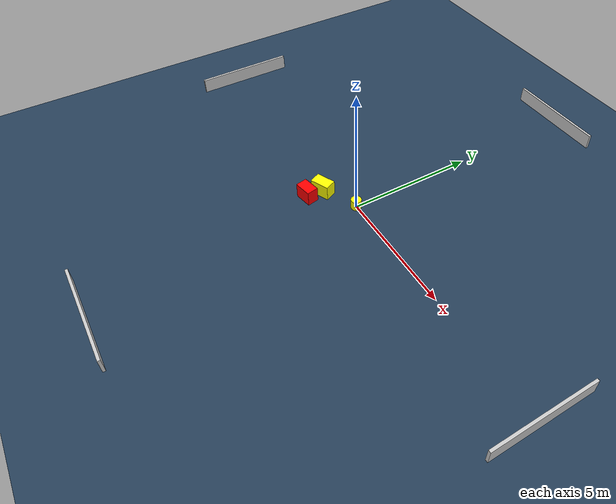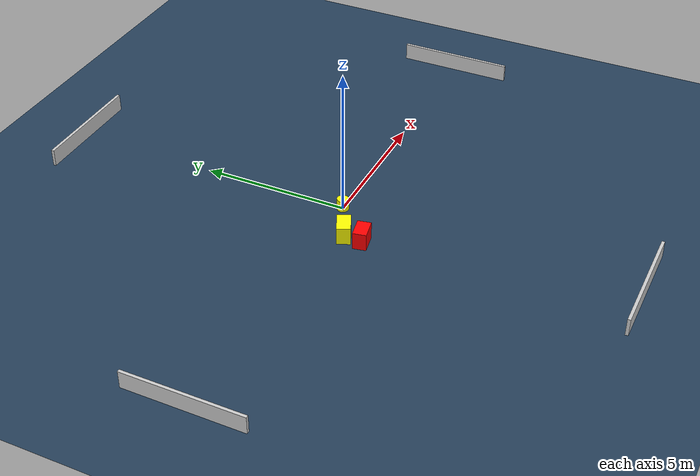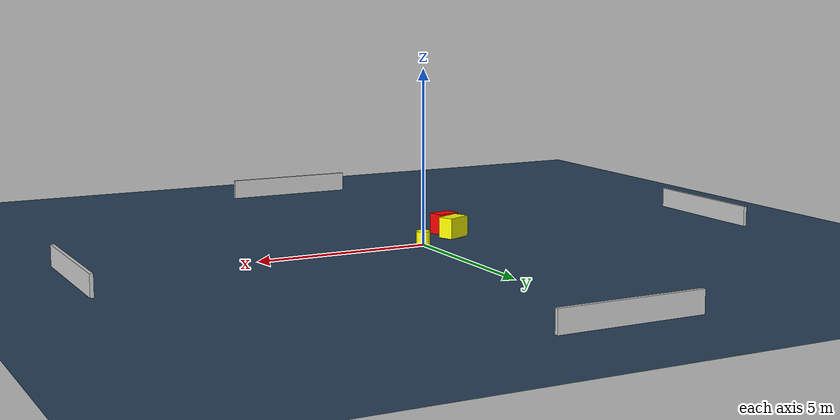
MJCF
<?xml version="1.0" ?>
<mujoco model="generated_environment">
  <option timestep="0.01" integrator="RK4" cone="elliptic"/>
  <default>
    <geom density="1"/>
  </default>
  <asset>
    <texture builtin="gradient" height="3072" name="skybox" rgb1="0.3 0.5 0.7" rgb2="0 0 0" type="skybox" width="512"/>
    <texture builtin="checker" height="300" name="groundplane" rgb1="0.2 0.3 0.4" rgb2="0.1 0.2 0.3" type="2d" width="300"/>
    <material name="groundplane" reflectance="0.2" texrepeat="5 5" texture="groundplane"/>
  </asset>
  <worldbody>
    <light dir="0 0 -1" directional="true" pos="0 0 1.5"/>
    <geom condim="3" friction="0.5 0.005 0.001" material="groundplane" name="floor" pos="0 0 0" size="0 0 0.05" type="plane"/>
    <body name="walls">
      <geom name="wall_1" condim="4" pos="-10.0 0.0 0.3" rgba="0.800000011920929 0.800000011920929 0.800000011920929 1.0" size="0.05 2.0 0.3" type="box"/>
      <geom name="wall_2" condim="4" pos="10.0 0.0 0.3" rgba="0.800000011920929 0.800000011920929 0.800000011920929 1.0" size="0.05 2.0 0.3" type="box"/>
      <geom name="wall_3" condim="4" pos="0.0 -10.0 0.3" rgba="0.800000011920929 0.800000011920929 0.800000011920929 1.0" size="2.0 0.05 0.3" type="box"/>
      <geom name="wall_4" condim="4" pos="0.0 10.0 0.3" rgba="0.800000011920929 0.800000011920929 0.800000011920929 1.0" size="2.0 0.05 0.3" type="box"/>
    </body>
    <body name="robot">
      <joint name="joint_x" type="slide" pos="0 0 0" axis="1 0 0"/>
      <joint name="joint_y" type="slide" pos="0 0 0" axis="0 1 0"/>
      <geom name="robot" type="cylinder" pos="0.0 0.0 0.2" size="0.2 0.2 0.0" mass="5.0" friction="1.0 0.005 0.0001" condim="4" rgba="1.0 1.0 0.0 1.0"/>
    </body>
    <body name="obstacle_1_movable">
      <geom name="obstacle_1_movable" condim="4" pos="-1.343148883628226 -0.6698570528730061 0.3" euler="0 0 203.86467602691945" friction="0.0 0.005 0.001" rgba="1.0 1.0 0.0 1.0" size="0.38296351409087875 0.22895124325565125 0.3" type="box" mass="0.1"/>
      <joint type="free"/>
    </body>
    <body name="obstacle_2_static">
      <geom name="obstacle_2_static" condim="4" pos="-1.3884373844854923 -1.3198916366019153 0.3" euler="0 0 280.89238600354827" friction="0.0 0.005 0.001" rgba="1.0 0.0 0.0 1.0" size="0.22635599885942637 0.3437164734685232 0.3" type="box"/>
    </body>
  </worldbody>
  <actuator>
    <motor name="actuator_x" joint="joint_x" gear="1" ctrlrange="-1 1"/>
    <motor name="actuator_y" joint="joint_y" gear="1" ctrlrange="-1 1"/>
  </actuator>
</mujoco>
